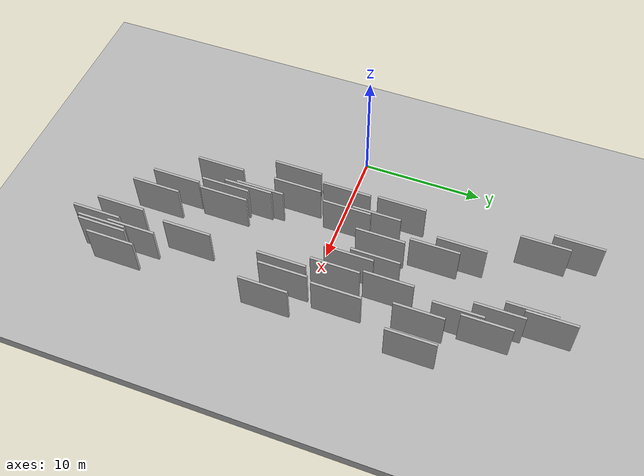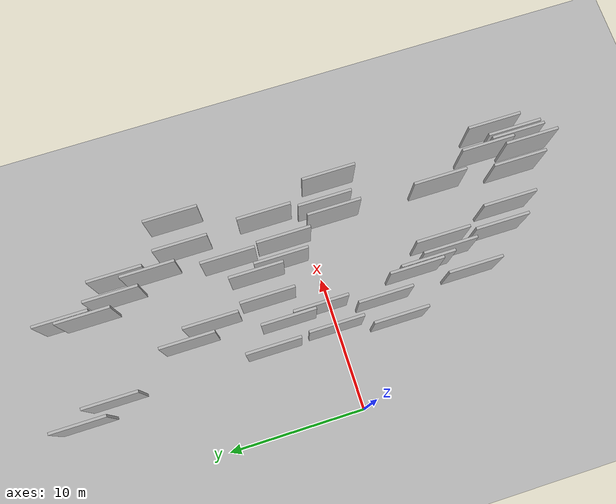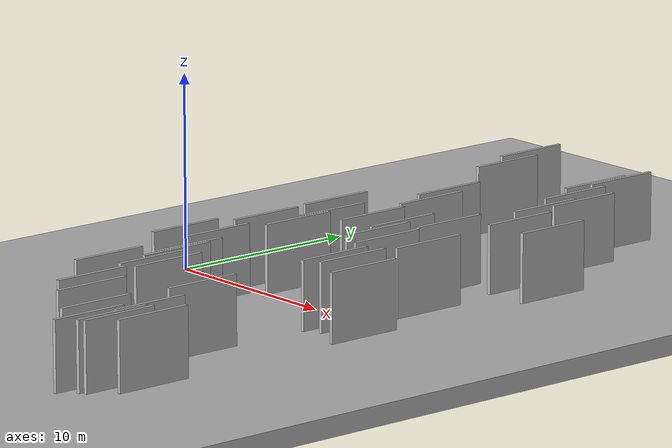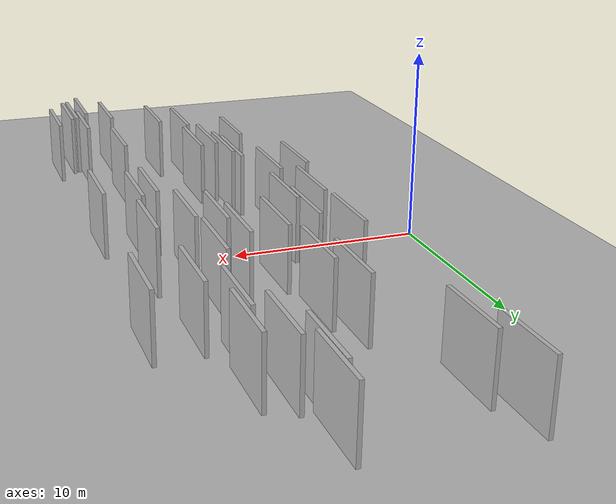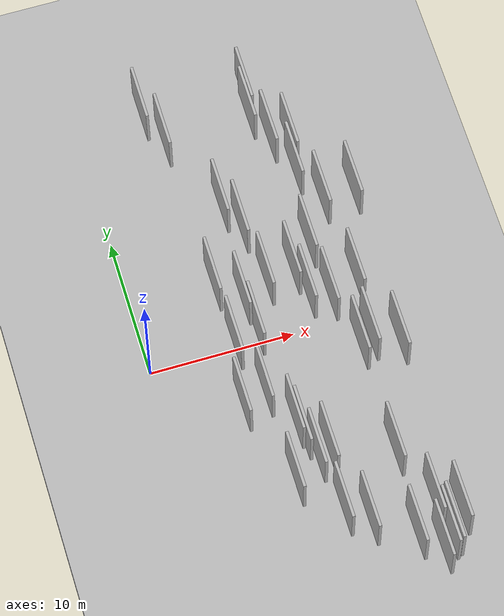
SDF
<?xml version="1.0" encoding="utf-8"?>

<sdf version="1.6">

   <world name="default">

      <gui fullscreen="0">

         <camera name="user_camera">

            <pose>-15 0 4.57585 0 0 0</pose>

            <view_controller>orbit</view_controller>

         </camera>

      </gui>

      <scene>

         <sky>

           <clouds>

             <speed>12</speed>

           </clouds>

         </sky>

         <ambient>0.4 0.4 0.4 1</ambient>

         <background>0.7 0.7 0.7 1</background>

         <shadows>1</shadows>

      </scene>

      <gravity>0 0 -9.8066</gravity>

      <magnetic_field>6e-06 2.3e-05 -4.2e-05</magnetic_field>

      <physics default="0" name="default_physics" type="ode">

         <ode>

            <solver>

               <type>quick</type>

               <iters>10</iters>

               <sor>1.0</sor>

               <use_dynamic_moi_rescaling>0</use_dynamic_moi_rescaling>

            </solver>

            <constraints>

               <cfm>0</cfm>

               <erp>0.2</erp>

               <contact_max_correcting_vel>100</contact_max_correcting_vel>

               <contact_surface_layer>0.001</contact_surface_layer>

            </constraints>

         </ode>

         <max_step_size>0.004</max_step_size>

         <real_time_factor>1</real_time_factor>

         <real_time_update_rate>250</real_time_update_rate>

      </physics>

      <light name="sun" type="directional">

         <cast_shadows>1</cast_shadows>

         <pose>0 0 10 0 0 0</pose>

         <diffuse>0.8 0.8 0.8 1</diffuse>

         <specular>0.2 0.2 0.2 1</specular>

         <attenuation>

            <range>1000</range>

            <constant>0.9</constant>

            <linear>0.01</linear>

            <quadratic>0.001</quadratic>

         </attenuation>

         <direction>-0.5 0.1 -0.9</direction>

      </light>

      <include>

         <name>ground_plane_1</name>

         <uri>model://HANNAS_ground_plane</uri>

         <pose>0 0 0  0 0 0</pose>

      </include>

      <include>

         <name>ground_plane_2</name>

         <uri>model://HANNAS_ground_plane</uri>

         <pose>100 0 0  0 0 0</pose>

      </include>

      <model name="HANNAS_wall_1">

         <static>1</static>

         <pose frame="">16.6936 -15.3172 0.0 0.000000 0.000000 1.570796</pose>

         <link name="link">

            <pose frame="">0 0 2.00 0 0 0</pose>

            <collision name="collision">

               <geometry>

                  <box>

                     <size>4.00 0.2 4.00</size>

                  </box>

               </geometry>

               <max_contacts>10</max_contacts>

               <surface>

                  <contact>

                     <ode/>

                  </contact>

                  <bounce/>

                  <friction>

                     <torsional>

                        <ode/>

                     </torsional>

                     <ode/>

                  </friction>

               </surface>

            </collision>

            <visual name="visual">

               <cast_shadows>0</cast_shadows>

               <geometry>

                  <box>

                     <size>4.00 0.2 4.00</size>

                  </box>

               </geometry>

               <material>

                  <script>

                     <uri>model://HANNAS_wall/materials/scripts</uri>

                     <uri>model://HANNAS_wall/materials/textures</uri>

                     <name>vrc/HANNAS_wall</name>

                  </script>

               </material>

            </visual>

            <self_collide>0</self_collide>

            <enable_wind>0</enable_wind>

            <kinematic>0</kinematic>

         </link>

      </model>

      <model name="HANNAS_wall_2">

         <static>1</static>

         <pose frame="">15.1705 2.7142 0.0 0.000000 0.000000 1.570796</pose>

         <link name="link">

            <pose frame="">0 0 2.00 0 0 0</pose>

            <collision name="collision">

               <geometry>

                  <box>

                     <size>4.00 0.2 4.00</size>

                  </box>

               </geometry>

               <max_contacts>10</max_contacts>

               <surface>

                  <contact>

                     <ode/>

                  </contact>

                  <bounce/>

                  <friction>

                     <torsional>

                        <ode/>

                     </torsional>

                     <ode/>

                  </friction>

               </surface>

            </collision>

            <visual name="visual">

               <cast_shadows>0</cast_shadows>

               <geometry>

                  <box>

                     <size>4.00 0.2 4.00</size>

                  </box>

               </geometry>

               <material>

                  <script>

                     <uri>model://HANNAS_wall/materials/scripts</uri>

                     <uri>model://HANNAS_wall/materials/textures</uri>

                     <name>vrc/HANNAS_wall</name>

                  </script>

               </material>

            </visual>

            <self_collide>0</self_collide>

            <enable_wind>0</enable_wind>

            <kinematic>0</kinematic>

         </link>

      </model>

      <model name="HANNAS_wall_3">

         <static>1</static>

         <pose frame="">4.6821 18.8132 0.0 0.000000 0.000000 1.570796</pose>

         <link name="link">

            <pose frame="">0 0 2.00 0 0 0</pose>

            <collision name="collision">

               <geometry>

                  <box>

                     <size>4.00 0.2 4.00</size>

                  </box>

               </geometry>

               <max_contacts>10</max_contacts>

               <surface>

                  <contact>

                     <ode/>

                  </contact>

                  <bounce/>

                  <friction>

                     <torsional>

                        <ode/>

                     </torsional>

                     <ode/>

                  </friction>

               </surface>

            </collision>

            <visual name="visual">

               <cast_shadows>0</cast_shadows>

               <geometry>

                  <box>

                     <size>4.00 0.2 4.00</size>

                  </box>

               </geometry>

               <material>

                  <script>

                     <uri>model://HANNAS_wall/materials/scripts</uri>

                     <uri>model://HANNAS_wall/materials/textures</uri>

                     <name>vrc/HANNAS_wall</name>

                  </script>

               </material>

            </visual>

            <self_collide>0</self_collide>

            <enable_wind>0</enable_wind>

            <kinematic>0</kinematic>

         </link>

      </model>

      <model name="HANNAS_wall_4">

         <static>1</static>

         <pose frame="">14.7595 -17.5073 0.0 0.000000 0.000000 1.570796</pose>

         <link name="link">

            <pose frame="">0 0 2.00 0 0 0</pose>

            <collision name="collision">

               <geometry>

                  <box>

                     <size>4.00 0.2 4.00</size>

                  </box>

               </geometry>

               <max_contacts>10</max_contacts>

               <surface>

                  <contact>

                     <ode/>

                  </contact>

                  <bounce/>

                  <friction>

                     <torsional>

                        <ode/>

                     </torsional>

                     <ode/>

                  </friction>

               </surface>

            </collision>

            <visual name="visual">

               <cast_shadows>0</cast_shadows>

               <geometry>

                  <box>

                     <size>4.00 0.2 4.00</size>

                  </box>

               </geometry>

               <material>

                  <script>

                     <uri>model://HANNAS_wall/materials/scripts</uri>

                     <uri>model://HANNAS_wall/materials/textures</uri>

                     <name>vrc/HANNAS_wall</name>

                  </script>

               </material>

            </visual>

            <self_collide>0</self_collide>

            <enable_wind>0</enable_wind>

            <kinematic>0</kinematic>

         </link>

      </model>

      <model name="HANNAS_wall_5">

         <static>1</static>

         <pose frame="">6.8930 -3.6148 0.0 0.000000 0.000000 1.570796</pose>

         <link name="link">

            <pose frame="">0 0 2.00 0 0 0</pose>

            <collision name="collision">

               <geometry>

                  <box>

                     <size>4.00 0.2 4.00</size>

                  </box>

               </geometry>

               <max_contacts>10</max_contacts>

               <surface>

                  <contact>

                     <ode/>

                  </contact>

                  <bounce/>

                  <friction>

                     <torsional>

                        <ode/>

                     </torsional>

                     <ode/>

                  </friction>

               </surface>

            </collision>

            <visual name="visual">

               <cast_shadows>0</cast_shadows>

               <geometry>

                  <box>

                     <size>4.00 0.2 4.00</size>

                  </box>

               </geometry>

               <material>

                  <script>

                     <uri>model://HANNAS_wall/materials/scripts</uri>

                     <uri>model://HANNAS_wall/materials/textures</uri>

                     <name>vrc/HANNAS_wall</name>

                  </script>

               </material>

            </visual>

            <self_collide>0</self_collide>

            <enable_wind>0</enable_wind>

            <kinematic>0</kinematic>

         </link>

      </model>

      <model name="HANNAS_wall_6">

         <static>1</static>

         <pose frame="">11.7753 16.7641 0.0 0.000000 0.000000 1.570796</pose>

         <link name="link">

            <pose frame="">0 0 2.00 0 0 0</pose>

            <collision name="collision">

               <geometry>

                  <box>

                     <size>4.00 0.2 4.00</size>

                  </box>

               </geometry>

               <max_contacts>10</max_contacts>

               <surface>

                  <contact>

                     <ode/>

                  </contact>

                  <bounce/>

                  <friction>

                     <torsional>

                        <ode/>

                     </torsional>

                     <ode/>

                  </friction>

               </surface>

            </collision>

            <visual name="visual">

               <cast_shadows>0</cast_shadows>

               <geometry>

                  <box>

                     <size>4.00 0.2 4.00</size>

                  </box>

               </geometry>

               <material>

                  <script>

                     <uri>model://HANNAS_wall/materials/scripts</uri>

                     <uri>model://HANNAS_wall/materials/textures</uri>

                     <name>vrc/HANNAS_wall</name>

                  </script>

               </material>

            </visual>

            <self_collide>0</self_collide>

            <enable_wind>0</enable_wind>

            <kinematic>0</kinematic>

         </link>

      </model>

      <model name="HANNAS_wall_7">

         <static>1</static>

         <pose frame="">8.8121 8.4600 0.0 0.000000 0.000000 1.570796</pose>

         <link name="link">

            <pose frame="">0 0 2.00 0 0 0</pose>

            <collision name="collision">

               <geometry>

                  <box>

                     <size>4.00 0.2 4.00</size>

                  </box>

               </geometry>

               <max_contacts>10</max_contacts>

               <surface>

                  <contact>

                     <ode/>

                  </contact>

                  <bounce/>

                  <friction>

                     <torsional>

                        <ode/>

                     </torsional>

                     <ode/>

                  </friction>

               </surface>

            </collision>

            <visual name="visual">

               <cast_shadows>0</cast_shadows>

               <geometry>

                  <box>

                     <size>4.00 0.2 4.00</size>

                  </box>

               </geometry>

               <material>

                  <script>

                     <uri>model://HANNAS_wall/materials/scripts</uri>

                     <uri>model://HANNAS_wall/materials/textures</uri>

                     <name>vrc/HANNAS_wall</name>

                  </script>

               </material>

            </visual>

            <self_collide>0</self_collide>

            <enable_wind>0</enable_wind>

            <kinematic>0</kinematic>

         </link>

      </model>

      <model name="HANNAS_wall_8">

         <static>1</static>

         <pose frame="">16.5922 -2.5811 0.0 0.000000 0.000000 1.570796</pose>

         <link name="link">

            <pose frame="">0 0 2.00 0 0 0</pose>

            <collision name="collision">

               <geometry>

                  <box>

                     <size>4.00 0.2 4.00</size>

                  </box>

               </geometry>

               <max_contacts>10</max_contacts>

               <surface>

                  <contact>

                     <ode/>

                  </contact>

                  <bounce/>

                  <friction>

                     <torsional>

                        <ode/>

                     </torsional>

                     <ode/>

                  </friction>

               </surface>

            </collision>

            <visual name="visual">

               <cast_shadows>0</cast_shadows>

               <geometry>

                  <box>

                     <size>4.00 0.2 4.00</size>

                  </box>

               </geometry>

               <material>

                  <script>

                     <uri>model://HANNAS_wall/materials/scripts</uri>

                     <uri>model://HANNAS_wall/materials/textures</uri>

                     <name>vrc/HANNAS_wall</name>

                  </script>

               </material>

            </visual>

            <self_collide>0</self_collide>

            <enable_wind>0</enable_wind>

            <kinematic>0</kinematic>

         </link>

      </model>

      <model name="HANNAS_wall_9">

         <static>1</static>

         <pose frame="">15.2022 -14.2914 0.0 0.000000 0.000000 1.570796</pose>

         <link name="link">

            <pose frame="">0 0 2.00 0 0 0</pose>

            <collision name="collision">

               <geometry>

                  <box>

                     <size>4.00 0.2 4.00</size>

                  </box>

               </geometry>

               <max_contacts>10</max_contacts>

               <surface>

                  <contact>

                     <ode/>

                  </contact>

                  <bounce/>

                  <friction>

                     <torsional>

                        <ode/>

                     </torsional>

                     <ode/>

                  </friction>

               </surface>

            </collision>

            <visual name="visual">

               <cast_shadows>0</cast_shadows>

               <geometry>

                  <box>

                     <size>4.00 0.2 4.00</size>

                  </box>

               </geometry>

               <material>

                  <script>

                     <uri>model://HANNAS_wall/materials/scripts</uri>

                     <uri>model://HANNAS_wall/materials/textures</uri>

                     <name>vrc/HANNAS_wall</name>

                  </script>

               </material>

            </visual>

            <self_collide>0</self_collide>

            <enable_wind>0</enable_wind>

            <kinematic>0</kinematic>

         </link>

      </model>

      <model name="HANNAS_wall_10">

         <static>1</static>

         <pose frame="">5.8084 4.8371 0.0 0.000000 0.000000 1.570796</pose>

         <link name="link">

            <pose frame="">0 0 2.00 0 0 0</pose>

            <collision name="collision">

               <geometry>

                  <box>

                     <size>4.00 0.2 4.00</size>

                  </box>

               </geometry>

               <max_contacts>10</max_contacts>

               <surface>

                  <contact>

                     <ode/>

                  </contact>

                  <bounce/>

                  <friction>

                     <torsional>

                        <ode/>

                     </torsional>

                     <ode/>

                  </friction>

               </surface>

            </collision>

            <visual name="visual">

               <cast_shadows>0</cast_shadows>

               <geometry>

                  <box>

                     <size>4.00 0.2 4.00</size>

                  </box>

               </geometry>

               <material>

                  <script>

                     <uri>model://HANNAS_wall/materials/scripts</uri>

                     <uri>model://HANNAS_wall/materials/textures</uri>

                     <name>vrc/HANNAS_wall</name>

                  </script>

               </material>

            </visual>

            <self_collide>0</self_collide>

            <enable_wind>0</enable_wind>

            <kinematic>0</kinematic>

         </link>

      </model>

      <model name="HANNAS_wall_11">

         <static>1</static>

         <pose frame="">13.8504 -10.1276 0.0 0.000000 0.000000 1.570796</pose>

         <link name="link">

            <pose frame="">0 0 2.00 0 0 0</pose>

            <collision name="collision">

               <geometry>

                  <box>

                     <size>4.00 0.2 4.00</size>

                  </box>

               </geometry>

               <max_contacts>10</max_contacts>

               <surface>

                  <contact>

                     <ode/>

                  </contact>

                  <bounce/>

                  <friction>

                     <torsional>

                        <ode/>

                     </torsional>

                     <ode/>

                  </friction>

               </surface>

            </collision>

            <visual name="visual">

               <cast_shadows>0</cast_shadows>

               <geometry>

                  <box>

                     <size>4.00 0.2 4.00</size>

                  </box>

               </geometry>

               <material>

                  <script>

                     <uri>model://HANNAS_wall/materials/scripts</uri>

                     <uri>model://HANNAS_wall/materials/textures</uri>

                     <name>vrc/HANNAS_wall</name>

                  </script>

               </material>

            </visual>

            <self_collide>0</self_collide>

            <enable_wind>0</enable_wind>

            <kinematic>0</kinematic>

         </link>

      </model>

      <model name="HANNAS_wall_12">

         <static>1</static>

         <pose frame="">8.1723 -6.3561 0.0 0.000000 0.000000 1.570796</pose>

         <link name="link">

            <pose frame="">0 0 2.00 0 0 0</pose>

            <collision name="collision">

               <geometry>

                  <box>

                     <size>4.00 0.2 4.00</size>

                  </box>

               </geometry>

               <max_contacts>10</max_contacts>

               <surface>

                  <contact>

                     <ode/>

                  </contact>

                  <bounce/>

                  <friction>

                     <torsional>

                        <ode/>

                     </torsional>

                     <ode/>

                  </friction>

               </surface>

            </collision>

            <visual name="visual">

               <cast_shadows>0</cast_shadows>

               <geometry>

                  <box>

                     <size>4.00 0.2 4.00</size>

                  </box>

               </geometry>

               <material>

                  <script>

                     <uri>model://HANNAS_wall/materials/scripts</uri>

                     <uri>model://HANNAS_wall/materials/textures</uri>

                     <name>vrc/HANNAS_wall</name>

                  </script>

               </material>

            </visual>

            <self_collide>0</self_collide>

            <enable_wind>0</enable_wind>

            <kinematic>0</kinematic>

         </link>

      </model>

      <model name="HANNAS_wall_13">

         <static>1</static>

         <pose frame="">9.3895 -13.1671 0.0 0.000000 0.000000 1.570796</pose>

         <link name="link">

            <pose frame="">0 0 2.00 0 0 0</pose>

            <collision name="collision">

               <geometry>

                  <box>

                     <size>4.00 0.2 4.00</size>

                  </box>

               </geometry>

               <max_contacts>10</max_contacts>

               <surface>

                  <contact>

                     <ode/>

                  </contact>

                  <bounce/>

                  <friction>

                     <torsional>

                        <ode/>

                     </torsional>

                     <ode/>

                  </friction>

               </surface>

            </collision>

            <visual name="visual">

               <cast_shadows>0</cast_shadows>

               <geometry>

                  <box>

                     <size>4.00 0.2 4.00</size>

                  </box>

               </geometry>

               <material>

                  <script>

                     <uri>model://HANNAS_wall/materials/scripts</uri>

                     <uri>model://HANNAS_wall/materials/textures</uri>

                     <name>vrc/HANNAS_wall</name>

                  </script>

               </material>

            </visual>

            <self_collide>0</self_collide>

            <enable_wind>0</enable_wind>

            <kinematic>0</kinematic>

         </link>

      </model>

      <model name="HANNAS_wall_14">

         <static>1</static>

         <pose frame="">13.4385 -16.0809 0.0 0.000000 0.000000 1.570796</pose>

         <link name="link">

            <pose frame="">0 0 2.00 0 0 0</pose>

            <collision name="collision">

               <geometry>

                  <box>

                     <size>4.00 0.2 4.00</size>

                  </box>

               </geometry>

               <max_contacts>10</max_contacts>

               <surface>

                  <contact>

                     <ode/>

                  </contact>

                  <bounce/>

                  <friction>

                     <torsional>

                        <ode/>

                     </torsional>

                     <ode/>

                  </friction>

               </surface>

            </collision>

            <visual name="visual">

               <cast_shadows>0</cast_shadows>

               <geometry>

                  <box>

                     <size>4.00 0.2 4.00</size>

                  </box>

               </geometry>

               <material>

                  <script>

                     <uri>model://HANNAS_wall/materials/scripts</uri>

                     <uri>model://HANNAS_wall/materials/textures</uri>

                     <name>vrc/HANNAS_wall</name>

                  </script>

               </material>

            </visual>

            <self_collide>0</self_collide>

            <enable_wind>0</enable_wind>

            <kinematic>0</kinematic>

         </link>

      </model>

      <model name="HANNAS_wall_15">

         <static>1</static>

         <pose frame="">15.4638 -16.7162 0.0 0.000000 0.000000 1.570796</pose>

         <link name="link">

            <pose frame="">0 0 2.00 0 0 0</pose>

            <collision name="collision">

               <geometry>

                  <box>

                     <size>4.00 0.2 4.00</size>

                  </box>

               </geometry>

               <max_contacts>10</max_contacts>

               <surface>

                  <contact>

                     <ode/>

                  </contact>

                  <bounce/>

                  <friction>

                     <torsional>

                        <ode/>

                     </torsional>

                     <ode/>

                  </friction>

               </surface>

            </collision>

            <visual name="visual">

               <cast_shadows>0</cast_shadows>

               <geometry>

                  <box>

                     <size>4.00 0.2 4.00</size>

                  </box>

               </geometry>

               <material>

                  <script>

                     <uri>model://HANNAS_wall/materials/scripts</uri>

                     <uri>model://HANNAS_wall/materials/textures</uri>

                     <name>vrc/HANNAS_wall</name>

                  </script>

               </material>

            </visual>

            <self_collide>0</self_collide>

            <enable_wind>0</enable_wind>

            <kinematic>0</kinematic>

         </link>

      </model>

      <model name="HANNAS_wall_16">

         <static>1</static>

         <pose frame="">13.9413 13.9471 0.0 0.000000 0.000000 1.570796</pose>

         <link name="link">

            <pose frame="">0 0 2.00 0 0 0</pose>

            <collision name="collision">

               <geometry>

                  <box>

                     <size>4.00 0.2 4.00</size>

                  </box>

               </geometry>

               <max_contacts>10</max_contacts>

               <surface>

                  <contact>

                     <ode/>

                  </contact>

                  <bounce/>

                  <friction>

                     <torsional>

                        <ode/>

                     </torsional>

                     <ode/>

                  </friction>

               </surface>

            </collision>

            <visual name="visual">

               <cast_shadows>0</cast_shadows>

               <geometry>

                  <box>

                     <size>4.00 0.2 4.00</size>

                  </box>

               </geometry>

               <material>

                  <script>

                     <uri>model://HANNAS_wall/materials/scripts</uri>

                     <uri>model://HANNAS_wall/materials/textures</uri>

                     <name>vrc/HANNAS_wall</name>

                  </script>

               </material>

            </visual>

            <self_collide>0</self_collide>

            <enable_wind>0</enable_wind>

            <kinematic>0</kinematic>

         </link>

      </model>

      <model name="HANNAS_wall_17">

         <static>1</static>

         <pose frame="">9.3123 4.2130 0.0 0.000000 0.000000 1.570796</pose>

         <link name="link">

            <pose frame="">0 0 2.00 0 0 0</pose>

            <collision name="collision">

               <geometry>

                  <box>

                     <size>4.00 0.2 4.00</size>

                  </box>

               </geometry>

               <max_contacts>10</max_contacts>

               <surface>

                  <contact>

                     <ode/>

                  </contact>

                  <bounce/>

                  <friction>

                     <torsional>

                        <ode/>

                     </torsional>

                     <ode/>

                  </friction>

               </surface>

            </collision>

            <visual name="visual">

               <cast_shadows>0</cast_shadows>

               <geometry>

                  <box>

                     <size>4.00 0.2 4.00</size>

                  </box>

               </geometry>

               <material>

                  <script>

                     <uri>model://HANNAS_wall/materials/scripts</uri>

                     <uri>model://HANNAS_wall/materials/textures</uri>

                     <name>vrc/HANNAS_wall</name>

                  </script>

               </material>

            </visual>

            <self_collide>0</self_collide>

            <enable_wind>0</enable_wind>

            <kinematic>0</kinematic>

         </link>

      </model>

      <model name="HANNAS_wall_18">

         <static>1</static>

         <pose frame="">7.9626 10.3638 0.0 0.000000 0.000000 1.570796</pose>

         <link name="link">

            <pose frame="">0 0 2.00 0 0 0</pose>

            <collision name="collision">

               <geometry>

                  <box>

                     <size>4.00 0.2 4.00</size>

                  </box>

               </geometry>

               <max_contacts>10</max_contacts>

               <surface>

                  <contact>

                     <ode/>

                  </contact>

                  <bounce/>

                  <friction>

                     <torsional>

                        <ode/>

                     </torsional>

                     <ode/>

                  </friction>

               </surface>

            </collision>

            <visual name="visual">

               <cast_shadows>0</cast_shadows>

               <geometry>

                  <box>

                     <size>4.00 0.2 4.00</size>

                  </box>

               </geometry>

               <material>

                  <script>

                     <uri>model://HANNAS_wall/materials/scripts</uri>

                     <uri>model://HANNAS_wall/materials/textures</uri>

                     <name>vrc/HANNAS_wall</name>

                  </script>

               </material>

            </visual>

            <self_collide>0</self_collide>

            <enable_wind>0</enable_wind>

            <kinematic>0</kinematic>

         </link>

      </model>

      <model name="HANNAS_wall_19">

         <static>1</static>

         <pose frame="">11.2522 4.4628 0.0 0.000000 0.000000 1.570796</pose>

         <link name="link">

            <pose frame="">0 0 2.00 0 0 0</pose>

            <collision name="collision">

               <geometry>

                  <box>

                     <size>4.00 0.2 4.00</size>

                  </box>

               </geometry>

               <max_contacts>10</max_contacts>

               <surface>

                  <contact>

                     <ode/>

                  </contact>

                  <bounce/>

                  <friction>

                     <torsional>

                        <ode/>

                     </torsional>

                     <ode/>

                  </friction>

               </surface>

            </collision>

            <visual name="visual">

               <cast_shadows>0</cast_shadows>

               <geometry>

                  <box>

                     <size>4.00 0.2 4.00</size>

                  </box>

               </geometry>

               <material>

                  <script>

                     <uri>model://HANNAS_wall/materials/scripts</uri>

                     <uri>model://HANNAS_wall/materials/textures</uri>

                     <name>vrc/HANNAS_wall</name>

                  </script>

               </material>

            </visual>

            <self_collide>0</self_collide>

            <enable_wind>0</enable_wind>

            <kinematic>0</kinematic>

         </link>

      </model>

      <model name="HANNAS_wall_20">

         <static>1</static>

         <pose frame="">14.8044 -1.7205 0.0 0.000000 0.000000 1.570796</pose>

         <link name="link">

            <pose frame="">0 0 2.00 0 0 0</pose>

            <collision name="collision">

               <geometry>

                  <box>

                     <size>4.00 0.2 4.00</size>

                  </box>

               </geometry>

               <max_contacts>10</max_contacts>

               <surface>

                  <contact>

                     <ode/>

                  </contact>

                  <bounce/>

                  <friction>

                     <torsional>

                        <ode/>

                     </torsional>

                     <ode/>

                  </friction>

               </surface>

            </collision>

            <visual name="visual">

               <cast_shadows>0</cast_shadows>

               <geometry>

                  <box>

                     <size>4.00 0.2 4.00</size>

                  </box>

               </geometry>

               <material>

                  <script>

                     <uri>model://HANNAS_wall/materials/scripts</uri>

                     <uri>model://HANNAS_wall/materials/textures</uri>

                     <name>vrc/HANNAS_wall</name>

                  </script>

               </material>

            </visual>

            <self_collide>0</self_collide>

            <enable_wind>0</enable_wind>

            <kinematic>0</kinematic>

         </link>

      </model>

      <model name="HANNAS_wall_21">

         <static>1</static>

         <pose frame="">11.7199 2.4866 0.0 0.000000 0.000000 1.570796</pose>

         <link name="link">

            <pose frame="">0 0 2.00 0 0 0</pose>

            <collision name="collision">

               <geometry>

                  <box>

                     <size>4.00 0.2 4.00</size>

                  </box>

               </geometry>

               <max_contacts>10</max_contacts>

               <surface>

                  <contact>

                     <ode/>

                  </contact>

                  <bounce/>

                  <friction>

                     <torsional>

                        <ode/>

                     </torsional>

                     <ode/>

                  </friction>

               </surface>

            </collision>

            <visual name="visual">

               <cast_shadows>0</cast_shadows>

               <geometry>

                  <box>

                     <size>4.00 0.2 4.00</size>

                  </box>

               </geometry>

               <material>

                  <script>

                     <uri>model://HANNAS_wall/materials/scripts</uri>

                     <uri>model://HANNAS_wall/materials/textures</uri>

                     <name>vrc/HANNAS_wall</name>

                  </script>

               </material>

            </visual>

            <self_collide>0</self_collide>

            <enable_wind>0</enable_wind>

            <kinematic>0</kinematic>

         </link>

      </model>

      <model name="HANNAS_wall_22">

         <static>1</static>

         <pose frame="">13.1033 1.8708 0.0 0.000000 0.000000 1.570796</pose>

         <link name="link">

            <pose frame="">0 0 2.00 0 0 0</pose>

            <collision name="collision">

               <geometry>

                  <box>

                     <size>4.00 0.2 4.00</size>

                  </box>

               </geometry>

               <max_contacts>10</max_contacts>

               <surface>

                  <contact>

                     <ode/>

                  </contact>

                  <bounce/>

                  <friction>

                     <torsional>

                        <ode/>

                     </torsional>

                     <ode/>

                  </friction>

               </surface>

            </collision>

            <visual name="visual">

               <cast_shadows>0</cast_shadows>

               <geometry>

                  <box>

                     <size>4.00 0.2 4.00</size>

                  </box>

               </geometry>

               <material>

                  <script>

                     <uri>model://HANNAS_wall/materials/scripts</uri>

                     <uri>model://HANNAS_wall/materials/textures</uri>

                     <name>vrc/HANNAS_wall</name>

                  </script>

               </material>

            </visual>

            <self_collide>0</self_collide>

            <enable_wind>0</enable_wind>

            <kinematic>0</kinematic>

         </link>

      </model>

      <model name="HANNAS_wall_23">

         <static>1</static>

         <pose frame="">13.9822 -2.1459 0.0 0.000000 0.000000 1.570796</pose>

         <link name="link">

            <pose frame="">0 0 2.00 0 0 0</pose>

            <collision name="collision">

               <geometry>

                  <box>

                     <size>4.00 0.2 4.00</size>

                  </box>

               </geometry>

               <max_contacts>10</max_contacts>

               <surface>

                  <contact>

                     <ode/>

                  </contact>

                  <bounce/>

                  <friction>

                     <torsional>

                        <ode/>

                     </torsional>

                     <ode/>

                  </friction>

               </surface>

            </collision>

            <visual name="visual">

               <cast_shadows>0</cast_shadows>

               <geometry>

                  <box>

                     <size>4.00 0.2 4.00</size>

                  </box>

               </geometry>

               <material>

                  <script>

                     <uri>model://HANNAS_wall/materials/scripts</uri>

                     <uri>model://HANNAS_wall/materials/textures</uri>

                     <name>vrc/HANNAS_wall</name>

                  </script>

               </material>

            </visual>

            <self_collide>0</self_collide>

            <enable_wind>0</enable_wind>

            <kinematic>0</kinematic>

         </link>

      </model>

      <model name="HANNAS_wall_24">

         <static>1</static>

         <pose frame="">15.7667 -16.5365 0.0 0.000000 0.000000 1.570796</pose>

         <link name="link">

            <pose frame="">0 0 2.00 0 0 0</pose>

            <collision name="collision">

               <geometry>

                  <box>

                     <size>4.00 0.2 4.00</size>

                  </box>

               </geometry>

               <max_contacts>10</max_contacts>

               <surface>

                  <contact>

                     <ode/>

                  </contact>

                  <bounce/>

                  <friction>

                     <torsional>

                        <ode/>

                     </torsional>

                     <ode/>

                  </friction>

               </surface>

            </collision>

            <visual name="visual">

               <cast_shadows>0</cast_shadows>

               <geometry>

                  <box>

                     <size>4.00 0.2 4.00</size>

                  </box>

               </geometry>

               <material>

                  <script>

                     <uri>model://HANNAS_wall/materials/scripts</uri>

                     <uri>model://HANNAS_wall/materials/textures</uri>

                     <name>vrc/HANNAS_wall</name>

                  </script>

               </material>

            </visual>

            <self_collide>0</self_collide>

            <enable_wind>0</enable_wind>

            <kinematic>0</kinematic>

         </link>

      </model>

      <model name="HANNAS_wall_25">

         <static>1</static>

         <pose frame="">16.9851 9.1032 0.0 0.000000 0.000000 1.570796</pose>

         <link name="link">

            <pose frame="">0 0 2.00 0 0 0</pose>

            <collision name="collision">

               <geometry>

                  <box>

                     <size>4.00 0.2 4.00</size>

                  </box>

               </geometry>

               <max_contacts>10</max_contacts>

               <surface>

                  <contact>

                     <ode/>

                  </contact>

                  <bounce/>

                  <friction>

                     <torsional>

                        <ode/>

                     </torsional>

                     <ode/>

                  </friction>

               </surface>

            </collision>

            <visual name="visual">

               <cast_shadows>0</cast_shadows>

               <geometry>

                  <box>

                     <size>4.00 0.2 4.00</size>

                  </box>

               </geometry>

               <material>

                  <script>

                     <uri>model://HANNAS_wall/materials/scripts</uri>

                     <uri>model://HANNAS_wall/materials/textures</uri>

                     <name>vrc/HANNAS_wall</name>

                  </script>

               </material>

            </visual>

            <self_collide>0</self_collide>

            <enable_wind>0</enable_wind>

            <kinematic>0</kinematic>

         </link>

      </model>

      <model name="HANNAS_wall_26">

         <static>1</static>

         <pose frame="">10.8177 -14.2870 0.0 0.000000 0.000000 1.570796</pose>

         <link name="link">

            <pose frame="">0 0 2.00 0 0 0</pose>

            <collision name="collision">

               <geometry>

                  <box>

                     <size>4.00 0.2 4.00</size>

                  </box>

               </geometry>

               <max_contacts>10</max_contacts>

               <surface>

                  <contact>

                     <ode/>

                  </contact>

                  <bounce/>

                  <friction>

                     <torsional>

                        <ode/>

                     </torsional>

                     <ode/>

                  </friction>

               </surface>

            </collision>

            <visual name="visual">

               <cast_shadows>0</cast_shadows>

               <geometry>

                  <box>

                     <size>4.00 0.2 4.00</size>

                  </box>

               </geometry>

               <material>

                  <script>

                     <uri>model://HANNAS_wall/materials/scripts</uri>

                     <uri>model://HANNAS_wall/materials/textures</uri>

                     <name>vrc/HANNAS_wall</name>

                  </script>

               </material>

            </visual>

            <self_collide>0</self_collide>

            <enable_wind>0</enable_wind>

            <kinematic>0</kinematic>

         </link>

      </model>

      <model name="HANNAS_wall_27">

         <static>1</static>

         <pose frame="">14.7269 9.0099 0.0 0.000000 0.000000 1.570796</pose>

         <link name="link">

            <pose frame="">0 0 2.00 0 0 0</pose>

            <collision name="collision">

               <geometry>

                  <box>

                     <size>4.00 0.2 4.00</size>

                  </box>

               </geometry>

               <max_contacts>10</max_contacts>

               <surface>

                  <contact>

                     <ode/>

                  </contact>

                  <bounce/>

                  <friction>

                     <torsional>

                        <ode/>

                     </torsional>

                     <ode/>

                  </friction>

               </surface>

            </collision>

            <visual name="visual">

               <cast_shadows>0</cast_shadows>

               <geometry>

                  <box>

                     <size>4.00 0.2 4.00</size>

                  </box>

               </geometry>

               <material>

                  <script>

                     <uri>model://HANNAS_wall/materials/scripts</uri>

                     <uri>model://HANNAS_wall/materials/textures</uri>

                     <name>vrc/HANNAS_wall</name>

                  </script>

               </material>

            </visual>

            <self_collide>0</self_collide>

            <enable_wind>0</enable_wind>

            <kinematic>0</kinematic>

         </link>

      </model>

      <model name="HANNAS_wall_28">

         <static>1</static>

         <pose frame="">8.8433 -9.0732 0.0 0.000000 0.000000 1.570796</pose>

         <link name="link">

            <pose frame="">0 0 2.00 0 0 0</pose>

            <collision name="collision">

               <geometry>

                  <box>

                     <size>4.00 0.2 4.00</size>

                  </box>

               </geometry>

               <max_contacts>10</max_contacts>

               <surface>

                  <contact>

                     <ode/>

                  </contact>

                  <bounce/>

                  <friction>

                     <torsional>

                        <ode/>

                     </torsional>

                     <ode/>

                  </friction>

               </surface>

            </collision>

            <visual name="visual">

               <cast_shadows>0</cast_shadows>

               <geometry>

                  <box>

                     <size>4.00 0.2 4.00</size>

                  </box>

               </geometry>

               <material>

                  <script>

                     <uri>model://HANNAS_wall/materials/scripts</uri>

                     <uri>model://HANNAS_wall/materials/textures</uri>

                     <name>vrc/HANNAS_wall</name>

                  </script>

               </material>

            </visual>

            <self_collide>0</self_collide>

            <enable_wind>0</enable_wind>

            <kinematic>0</kinematic>

         </link>

      </model>

      <model name="HANNAS_wall_29">

         <static>1</static>

         <pose frame="">7.4059 3.2678 0.0 0.000000 0.000000 1.570796</pose>

         <link name="link">

            <pose frame="">0 0 2.00 0 0 0</pose>

            <collision name="collision">

               <geometry>

                  <box>

                     <size>4.00 0.2 4.00</size>

                  </box>

               </geometry>

               <max_contacts>10</max_contacts>

               <surface>

                  <contact>

                     <ode/>

                  </contact>

                  <bounce/>

                  <friction>

                     <torsional>

                        <ode/>

                     </torsional>

                     <ode/>

                  </friction>

               </surface>

            </collision>

            <visual name="visual">

               <cast_shadows>0</cast_shadows>

               <geometry>

                  <box>

                     <size>4.00 0.2 4.00</size>

                  </box>

               </geometry>

               <material>

                  <script>

                     <uri>model://HANNAS_wall/materials/scripts</uri>

                     <uri>model://HANNAS_wall/materials/textures</uri>

                     <name>vrc/HANNAS_wall</name>

                  </script>

               </material>

            </visual>

            <self_collide>0</self_collide>

            <enable_wind>0</enable_wind>

            <kinematic>0</kinematic>

         </link>

      </model>

      <model name="HANNAS_wall_30">

         <static>1</static>

         <pose frame="">12.6510 14.5547 0.0 0.000000 0.000000 1.570796</pose>

         <link name="link">

            <pose frame="">0 0 2.00 0 0 0</pose>

            <collision name="collision">

               <geometry>

                  <box>

                     <size>4.00 0.2 4.00</size>

                  </box>

               </geometry>

               <max_contacts>10</max_contacts>

               <surface>

                  <contact>

                     <ode/>

                  </contact>

                  <bounce/>

                  <friction>

                     <torsional>

                        <ode/>

                     </torsional>

                     <ode/>

                  </friction>

               </surface>

            </collision>

            <visual name="visual">

               <cast_shadows>0</cast_shadows>

               <geometry>

                  <box>

                     <size>4.00 0.2 4.00</size>

                  </box>

               </geometry>

               <material>

                  <script>

                     <uri>model://HANNAS_wall/materials/scripts</uri>

                     <uri>model://HANNAS_wall/materials/textures</uri>

                     <name>vrc/HANNAS_wall</name>

                  </script>

               </material>

            </visual>

            <self_collide>0</self_collide>

            <enable_wind>0</enable_wind>

            <kinematic>0</kinematic>

         </link>

      </model>

      <model name="HANNAS_wall_31">

         <static>1</static>

         <pose frame="">5.9520 0.2701 0.0 0.000000 0.000000 1.570796</pose>

         <link name="link">

            <pose frame="">0 0 2.00 0 0 0</pose>

            <collision name="collision">

               <geometry>

                  <box>

                     <size>4.00 0.2 4.00</size>

                  </box>

               </geometry>

               <max_contacts>10</max_contacts>

               <surface>

                  <contact>

                     <ode/>

                  </contact>

                  <bounce/>

                  <friction>

                     <torsional>

                        <ode/>

                     </torsional>

                     <ode/>

                  </friction>

               </surface>

            </collision>

            <visual name="visual">

               <cast_shadows>0</cast_shadows>

               <geometry>

                  <box>

                     <size>4.00 0.2 4.00</size>

                  </box>

               </geometry>

               <material>

                  <script>

                     <uri>model://HANNAS_wall/materials/scripts</uri>

                     <uri>model://HANNAS_wall/materials/textures</uri>

                     <name>vrc/HANNAS_wall</name>

                  </script>

               </material>

            </visual>

            <self_collide>0</self_collide>

            <enable_wind>0</enable_wind>

            <kinematic>0</kinematic>

         </link>

      </model>

      <model name="HANNAS_wall_32">

         <static>1</static>

         <pose frame="">13.6053 11.6765 0.0 0.000000 0.000000 1.570796</pose>

         <link name="link">

            <pose frame="">0 0 2.00 0 0 0</pose>

            <collision name="collision">

               <geometry>

                  <box>

                     <size>4.00 0.2 4.00</size>

                  </box>

               </geometry>

               <max_contacts>10</max_contacts>

               <surface>

                  <contact>

                     <ode/>

                  </contact>

                  <bounce/>

                  <friction>

                     <torsional>

                        <ode/>

                     </torsional>

                     <ode/>

                  </friction>

               </surface>

            </collision>

            <visual name="visual">

               <cast_shadows>0</cast_shadows>

               <geometry>

                  <box>

                     <size>4.00 0.2 4.00</size>

                  </box>

               </geometry>

               <material>

                  <script>

                     <uri>model://HANNAS_wall/materials/scripts</uri>

                     <uri>model://HANNAS_wall/materials/textures</uri>

                     <name>vrc/HANNAS_wall</name>

                  </script>

               </material>

            </visual>

            <self_collide>0</self_collide>

            <enable_wind>0</enable_wind>

            <kinematic>0</kinematic>

         </link>

      </model>

      <model name="HANNAS_wall_33">

         <static>1</static>

         <pose frame="">8.4023 -7.2778 0.0 0.000000 0.000000 1.570796</pose>

         <link name="link">

            <pose frame="">0 0 2.00 0 0 0</pose>

            <collision name="collision">

               <geometry>

                  <box>

                     <size>4.00 0.2 4.00</size>

                  </box>

               </geometry>

               <max_contacts>10</max_contacts>

               <surface>

                  <contact>

                     <ode/>

                  </contact>

                  <bounce/>

                  <friction>

                     <torsional>

                        <ode/>

                     </torsional>

                     <ode/>

                  </friction>

               </surface>

            </collision>

            <visual name="visual">

               <cast_shadows>0</cast_shadows>

               <geometry>

                  <box>

                     <size>4.00 0.2 4.00</size>

                  </box>

               </geometry>

               <material>

                  <script>

                     <uri>model://HANNAS_wall/materials/scripts</uri>

                     <uri>model://HANNAS_wall/materials/textures</uri>

                     <name>vrc/HANNAS_wall</name>

                  </script>

               </material>

            </visual>

            <self_collide>0</self_collide>

            <enable_wind>0</enable_wind>

            <kinematic>0</kinematic>

         </link>

      </model>

      <model name="HANNAS_wall_34">

         <static>1</static>

         <pose frame="">9.7330 -8.8598 0.0 0.000000 0.000000 1.570796</pose>

         <link name="link">

            <pose frame="">0 0 2.00 0 0 0</pose>

            <collision name="collision">

               <geometry>

                  <box>

                     <size>4.00 0.2 4.00</size>

                  </box>

               </geometry>

               <max_contacts>10</max_contacts>

               <surface>

                  <contact>

                     <ode/>

                  </contact>

                  <bounce/>

                  <friction>

                     <torsional>

                        <ode/>

                     </torsional>

                     <ode/>

                  </friction>

               </surface>

            </collision>

            <visual name="visual">

               <cast_shadows>0</cast_shadows>

               <geometry>

                  <box>

                     <size>4.00 0.2 4.00</size>

                  </box>

               </geometry>

               <material>

                  <script>

                     <uri>model://HANNAS_wall/materials/scripts</uri>

                     <uri>model://HANNAS_wall/materials/textures</uri>

                     <name>vrc/HANNAS_wall</name>

                  </script>

               </material>

            </visual>

            <self_collide>0</self_collide>

            <enable_wind>0</enable_wind>

            <kinematic>0</kinematic>

         </link>

      </model>

      <model name="HANNAS_wall_35">

         <static>1</static>

         <pose frame="">5.2125 -4.1837 0.0 0.000000 0.000000 1.570796</pose>

         <link name="link">

            <pose frame="">0 0 2.00 0 0 0</pose>

            <collision name="collision">

               <geometry>

                  <box>

                     <size>4.00 0.2 4.00</size>

                  </box>

               </geometry>

               <max_contacts>10</max_contacts>

               <surface>

                  <contact>

                     <ode/>

                  </contact>

                  <bounce/>

                  <friction>

                     <torsional>

                        <ode/>

                     </torsional>

                     <ode/>

                  </friction>

               </surface>

            </collision>

            <visual name="visual">

               <cast_shadows>0</cast_shadows>

               <geometry>

                  <box>

                     <size>4.00 0.2 4.00</size>

                  </box>

               </geometry>

               <material>

                  <script>

                     <uri>model://HANNAS_wall/materials/scripts</uri>

                     <uri>model://HANNAS_wall/materials/textures</uri>

                     <name>vrc/HANNAS_wall</name>

                  </script>

               </material>

            </visual>

            <self_collide>0</self_collide>

            <enable_wind>0</enable_wind>

            <kinematic>0</kinematic>

         </link>

      </model>

      <model name="HANNAS_wall_36">

         <static>1</static>

         <pose frame="">6.9964 -10.2780 0.0 0.000000 0.000000 1.570796</pose>

         <link name="link">

            <pose frame="">0 0 2.00 0 0 0</pose>

            <collision name="collision">

               <geometry>

                  <box>

                     <size>4.00 0.2 4.00</size>

                  </box>

               </geometry>

               <max_contacts>10</max_contacts>

               <surface>

                  <contact>

                     <ode/>

                  </contact>

                  <bounce/>

                  <friction>

                     <torsional>

                        <ode/>

                     </torsional>

                     <ode/>

                  </friction>

               </surface>

            </collision>

            <visual name="visual">

               <cast_shadows>0</cast_shadows>

               <geometry>

                  <box>

                     <size>4.00 0.2 4.00</size>

                  </box>

               </geometry>

               <material>

                  <script>

                     <uri>model://HANNAS_wall/materials/scripts</uri>

                     <uri>model://HANNAS_wall/materials/textures</uri>

                     <name>vrc/HANNAS_wall</name>

                  </script>

               </material>

            </visual>

            <self_collide>0</self_collide>

            <enable_wind>0</enable_wind>

            <kinematic>0</kinematic>

         </link>

      </model>

      <model name="HANNAS_wall_37">

         <static>1</static>

         <pose frame="">11.9953 18.2769 0.0 0.000000 0.000000 1.570796</pose>

         <link name="link">

            <pose frame="">0 0 2.00 0 0 0</pose>

            <collision name="collision">

               <geometry>

                  <box>

                     <size>4.00 0.2 4.00</size>

                  </box>

               </geometry>

               <max_contacts>10</max_contacts>

               <surface>

                  <contact>

                     <ode/>

                  </contact>

                  <bounce/>

                  <friction>

                     <torsional>

                        <ode/>

                     </torsional>

                     <ode/>

                  </friction>

               </surface>

            </collision>

            <visual name="visual">

               <cast_shadows>0</cast_shadows>

               <geometry>

                  <box>

                     <size>4.00 0.2 4.00</size>

                  </box>

               </geometry>

               <material>

                  <script>

                     <uri>model://HANNAS_wall/materials/scripts</uri>

                     <uri>model://HANNAS_wall/materials/textures</uri>

                     <name>vrc/HANNAS_wall</name>

                  </script>

               </material>

            </visual>

            <self_collide>0</self_collide>

            <enable_wind>0</enable_wind>

            <kinematic>0</kinematic>

         </link>

      </model>

      <model name="HANNAS_wall_38">

         <static>1</static>

         <pose frame="">5.6087 16.3807 0.0 0.000000 0.000000 1.570796</pose>

         <link name="link">

            <pose frame="">0 0 2.00 0 0 0</pose>

            <collision name="collision">

               <geometry>

                  <box>

                     <size>4.00 0.2 4.00</size>

                  </box>

               </geometry>

               <max_contacts>10</max_contacts>

               <surface>

                  <contact>

                     <ode/>

                  </contact>

                  <bounce/>

                  <friction>

                     <torsional>

                        <ode/>

                     </torsional>

                     <ode/>

                  </friction>

               </surface>

            </collision>

            <visual name="visual">

               <cast_shadows>0</cast_shadows>

               <geometry>

                  <box>

                     <size>4.00 0.2 4.00</size>

                  </box>

               </geometry>

               <material>

                  <script>

                     <uri>model://HANNAS_wall/materials/scripts</uri>

                     <uri>model://HANNAS_wall/materials/textures</uri>

                     <name>vrc/HANNAS_wall</name>

                  </script>

               </material>

            </visual>

            <self_collide>0</self_collide>

            <enable_wind>0</enable_wind>

            <kinematic>0</kinematic>

         </link>

      </model>

      <model name="HANNAS_wall_39">

         <static>1</static>

         <pose frame="">12.8593 6.0632 0.0 0.000000 0.000000 1.570796</pose>

         <link name="link">

            <pose frame="">0 0 2.00 0 0 0</pose>

            <collision name="collision">

               <geometry>

                  <box>

                     <size>4.00 0.2 4.00</size>

                  </box>

               </geometry>

               <max_contacts>10</max_contacts>

               <surface>

                  <contact>

                     <ode/>

                  </contact>

                  <bounce/>

                  <friction>

                     <torsional>

                        <ode/>

                     </torsional>

                     <ode/>

                  </friction>

               </surface>

            </collision>

            <visual name="visual">

               <cast_shadows>0</cast_shadows>

               <geometry>

                  <box>

                     <size>4.00 0.2 4.00</size>

                  </box>

               </geometry>

               <material>

                  <script>

                     <uri>model://HANNAS_wall/materials/scripts</uri>

                     <uri>model://HANNAS_wall/materials/textures</uri>

                     <name>vrc/HANNAS_wall</name>

                  </script>

               </material>

            </visual>

            <self_collide>0</self_collide>

            <enable_wind>0</enable_wind>

            <kinematic>0</kinematic>

         </link>

      </model>

      <model name="HANNAS_wall_40">

         <static>1</static>

         <pose frame="">7.6466 0.8627 0.0 0.000000 0.000000 1.570796</pose>

         <link name="link">

            <pose frame="">0 0 2.00 0 0 0</pose>

            <collision name="collision">

               <geometry>

                  <box>

                     <size>4.00 0.2 4.00</size>

                  </box>

               </geometry>

               <max_contacts>10</max_contacts>

               <surface>

                  <contact>

                     <ode/>

                  </contact>

                  <bounce/>

                  <friction>

                     <torsional>

                        <ode/>

                     </torsional>

                     <ode/>

                  </friction>

               </surface>

            </collision>

            <visual name="visual">

               <cast_shadows>0</cast_shadows>

               <geometry>

                  <box>

                     <size>4.00 0.2 4.00</size>

                  </box>

               </geometry>

               <material>

                  <script>

                     <uri>model://HANNAS_wall/materials/scripts</uri>

                     <uri>model://HANNAS_wall/materials/textures</uri>

                     <name>vrc/HANNAS_wall</name>

                  </script>

               </material>

            </visual>

            <self_collide>0</self_collide>

            <enable_wind>0</enable_wind>

            <kinematic>0</kinematic>

         </link>

      </model>

   </world>

</sdf>
